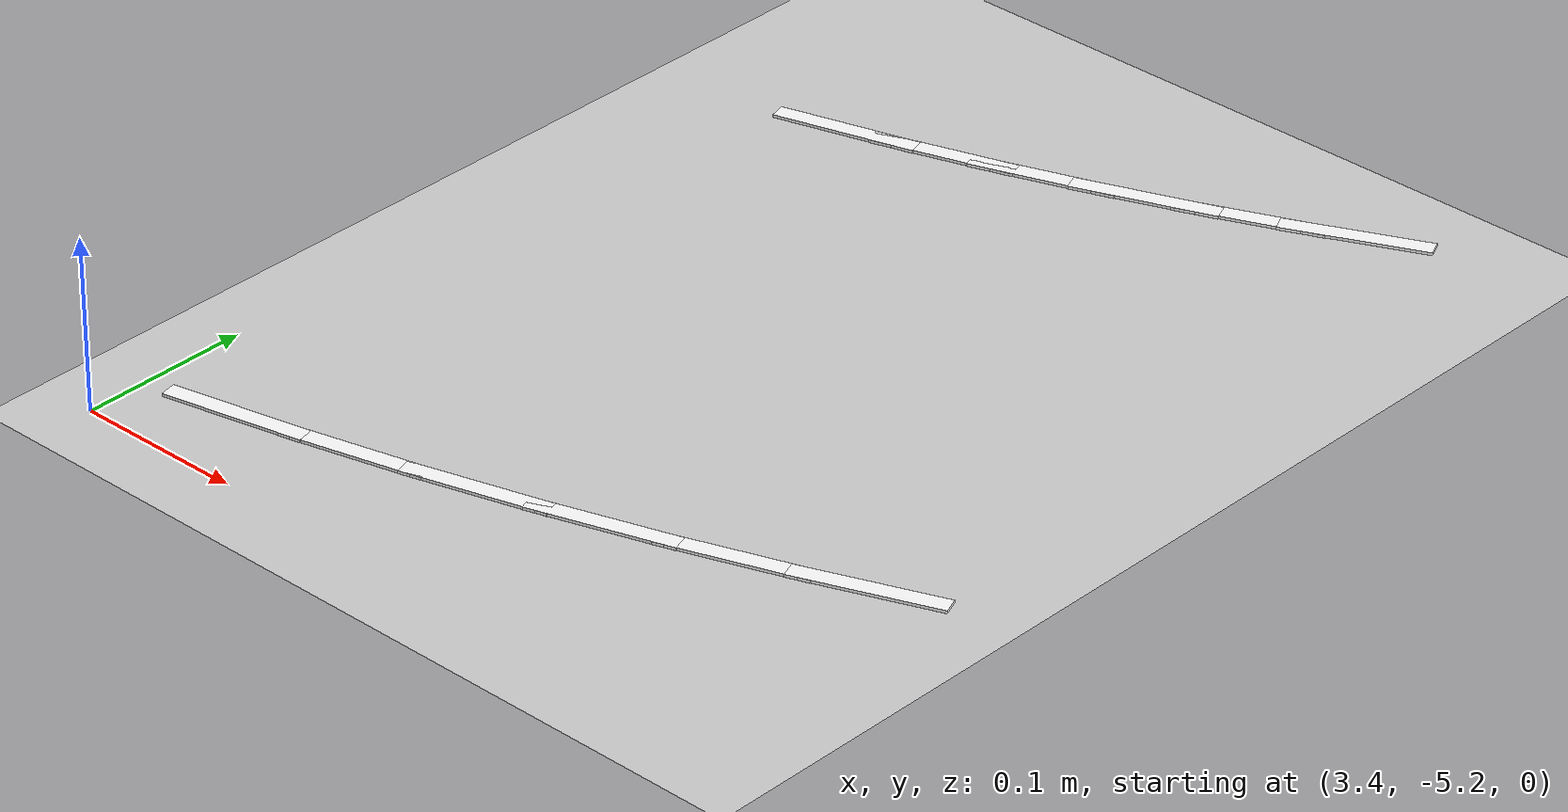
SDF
<sdf version="1.7">
 <world name="default">
  <model name="ground_plane">
   <static>1</static>
   <link name="link">
    <collision name="collision">
     <geometry><plane><normal>0 0 1</normal><size>100 100</size></plane></geometry>
     <surface>
      <contact><collide_bitmask>65535</collide_bitmask></contact>
      <friction><ode><mu>100</mu><mu2>50</mu2></ode></friction>
     </surface>
    </collision>
    <visual name="visual">
     <cast_shadows>0</cast_shadows>
     <geometry><plane><normal>0 0 1</normal><size>100 100</size></plane></geometry>
     <material>
      <script><uri>file://media/materials/scripts/gazebo.material</uri><name>Gazebo/Grey</name></script>
     </material>
    </visual>
   </link>
  </model>
  <model name="lane_line_right_56">
   <static>1</static>
   <link name="link">
    <pose>0 0 -0.004 0 -0 0</pose>
    <visual name="visual">
     <geometry><box><size>0.0841 0.01 0.01</size></box></geometry>
     <material><ambient>1 1 1 1</ambient><diffuse>1 1 1 1</diffuse></material>
    </visual>
    <collision name="collision"><geometry><box><size>0.0841 0.01 0.01</size></box></geometry></collision>
   </link>
   <pose>3.45505 -5.15216 0 0 -0 0.208371</pose>
  </model>
  <model name="lane_line_right_57">
   <static>1</static>
   <link name="link">
    <pose>0 0 -0.004 0 -0 0</pose>
    <visual name="visual">
     <geometry><box><size>0.0841 0.01 0.01</size></box></geometry>
     <material><ambient>1 1 1 1</ambient><diffuse>1 1 1 1</diffuse></material>
    </visual>
    <collision name="collision"><geometry><box><size>0.0841 0.01 0.01</size></box></geometry></collision>
   </link>
   <pose>3.5238 -5.13647 0 0 -0 0.240428</pose>
  </model>
  <model name="lane_line_left_58">
   <static>1</static>
   <link name="link">
    <pose>0 0 -0.004 0 -0 0</pose>
    <visual name="visual">
     <geometry><box><size>0.0841 0.01 0.01</size></box></geometry>
     <material><ambient>1 1 1 1</ambient><diffuse>1 1 1 1</diffuse></material>
    </visual>
    <collision name="collision"><geometry><box><size>0.0841 0.01 0.01</size></box></geometry></collision>
   </link>
   <pose>3.48436 -4.73334 0 0 -0 0.272485</pose>
  </model>
  <model name="lane_line_right_58">
   <static>1</static>
   <link name="link">
    <pose>0 0 -0.004 0 -0 0</pose>
    <visual name="visual">
     <geometry><box><size>0.0841 0.01 0.01</size></box></geometry>
     <material><ambient>1 1 1 1</ambient><diffuse>1 1 1 1</diffuse></material>
    </visual>
    <collision name="collision"><geometry><box><size>0.0841 0.01 0.01</size></box></geometry></collision>
   </link>
   <pose>3.59201 -5.11858 0 0 -0 0.272485</pose>
  </model>
  <model name="lane_line_left_59">
   <static>1</static>
   <link name="link">
    <pose>0 0 -0.004 0 -0 0</pose>
    <visual name="visual">
     <geometry><box><size>0.0841 0.01 0.01</size></box></geometry>
     <material><ambient>1 1 1 1</ambient><diffuse>1 1 1 1</diffuse></material>
    </visual>
    <collision name="collision"><geometry><box><size>0.0841 0.01 0.01</size></box></geometry></collision>
   </link>
   <pose>3.53966 -4.71693 0 0 -0 0.304542</pose>
  </model>
  <model name="lane_line_right_59">
   <static>1</static>
   <link name="link">
    <pose>0 0 -0.004 0 -0 0</pose>
    <visual name="visual">
     <geometry><box><size>0.0841 0.01 0.01</size></box></geometry>
     <material><ambient>1 1 1 1</ambient><diffuse>1 1 1 1</diffuse></material>
    </visual>
    <collision name="collision"><geometry><box><size>0.0841 0.01 0.01</size></box></geometry></collision>
   </link>
   <pose>3.65961 -5.09852 0 0 -0 0.304542</pose>
  </model>
  <model name="lane_line_left_60">
   <static>1</static>
   <link name="link">
    <pose>0 0 -0.004 0 -0 0</pose>
    <visual name="visual">
     <geometry><box><size>0.0841 0.01 0.01</size></box></geometry>
     <material><ambient>1 1 1 1</ambient><diffuse>1 1 1 1</diffuse></material>
    </visual>
    <collision name="collision"><geometry><box><size>0.0841 0.01 0.01</size></box></geometry></collision>
   </link>
   <pose>3.59442 -4.69875 0 0 -0 0.336599</pose>
  </model>
  <model name="lane_line_right_60">
   <static>1</static>
   <link name="link">
    <pose>0 0 -0.004 0 -0 0</pose>
    <visual name="visual">
     <geometry><box><size>0.0841 0.01 0.01</size></box></geometry>
     <material><ambient>1 1 1 1</ambient><diffuse>1 1 1 1</diffuse></material>
    </visual>
    <collision name="collision"><geometry><box><size>0.0841 0.01 0.01</size></box></geometry></collision>
   </link>
   <pose>3.72653 -5.0763 0 0 -0 0.336599</pose>
  </model>
  <model name="lane_line_left_61">
   <static>1</static>
   <link name="link">
    <pose>0 0 -0.004 0 -0 0</pose>
    <visual name="visual">
     <geometry><box><size>0.0841 0.01 0.01</size></box></geometry>
     <material><ambient>1 1 1 1</ambient><diffuse>1 1 1 1</diffuse></material>
    </visual>
    <collision name="collision"><geometry><box><size>0.0841 0.01 0.01</size></box></geometry></collision>
   </link>
   <pose>3.64856 -4.67882 0 0 -0 0.368656</pose>
  </model>
  <model name="lane_line_right_61">
   <static>1</static>
   <link name="link">
    <pose>0 0 -0.004 0 -0 0</pose>
    <visual name="visual">
     <geometry><box><size>0.0841 0.01 0.01</size></box></geometry>
     <material><ambient>1 1 1 1</ambient><diffuse>1 1 1 1</diffuse></material>
    </visual>
    <collision name="collision"><geometry><box><size>0.0841 0.01 0.01</size></box></geometry></collision>
   </link>
   <pose>3.7927 -5.05195 0 0 -0 0.368656</pose>
  </model>
  <model name="lane_line_left_62">
   <static>1</static>
   <link name="link">
    <pose>0 0 -0.004 0 -0 0</pose>
    <visual name="visual">
     <geometry><box><size>0.0841 0.01 0.01</size></box></geometry>
     <material><ambient>1 1 1 1</ambient><diffuse>1 1 1 1</diffuse></material>
    </visual>
    <collision name="collision"><geometry><box><size>0.0841 0.01 0.01</size></box></geometry></collision>
   </link>
   <pose>3.70204 -4.65717 0 0 -0 0.400713</pose>
  </model>
  <model name="lane_line_left_63">
   <static>1</static>
   <link name="link">
    <pose>0 0 -0.004 0 -0 0</pose>
    <visual name="visual">
     <geometry><box><size>0.0841 0.01 0.01</size></box></geometry>
     <material><ambient>1 1 1 1</ambient><diffuse>1 1 1 1</diffuse></material>
    </visual>
    <collision name="collision"><geometry><box><size>0.0841 0.01 0.01</size></box></geometry></collision>
   </link>
   <pose>3.75479 -4.63382 0 0 -0 0.43277</pose>
  </model>
 </world>
</sdf>
